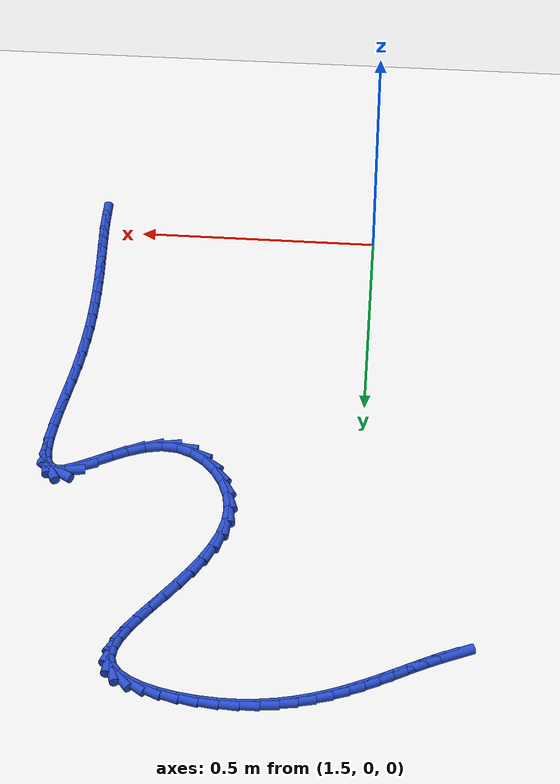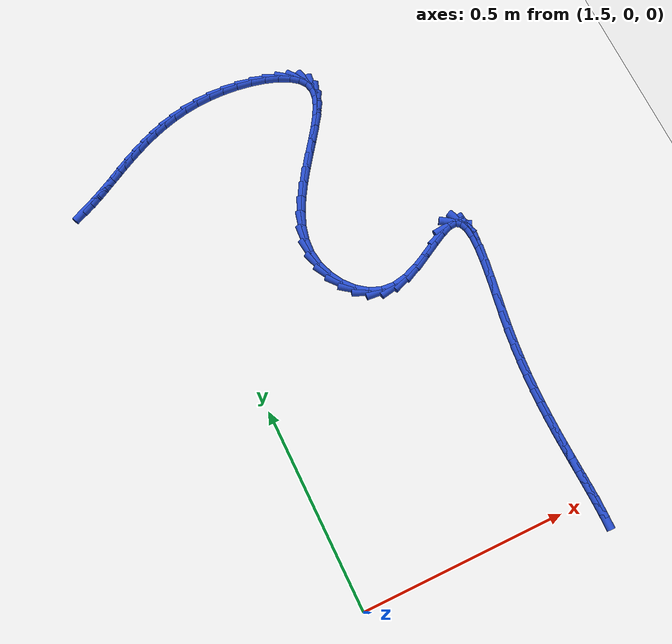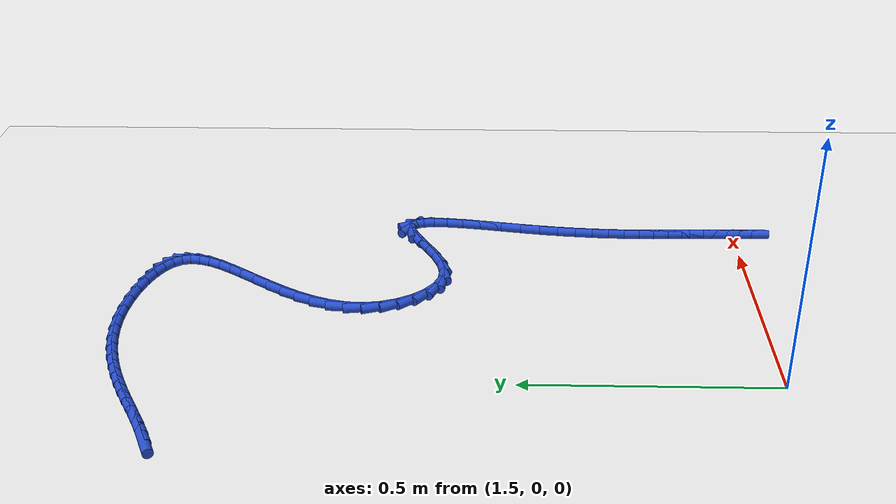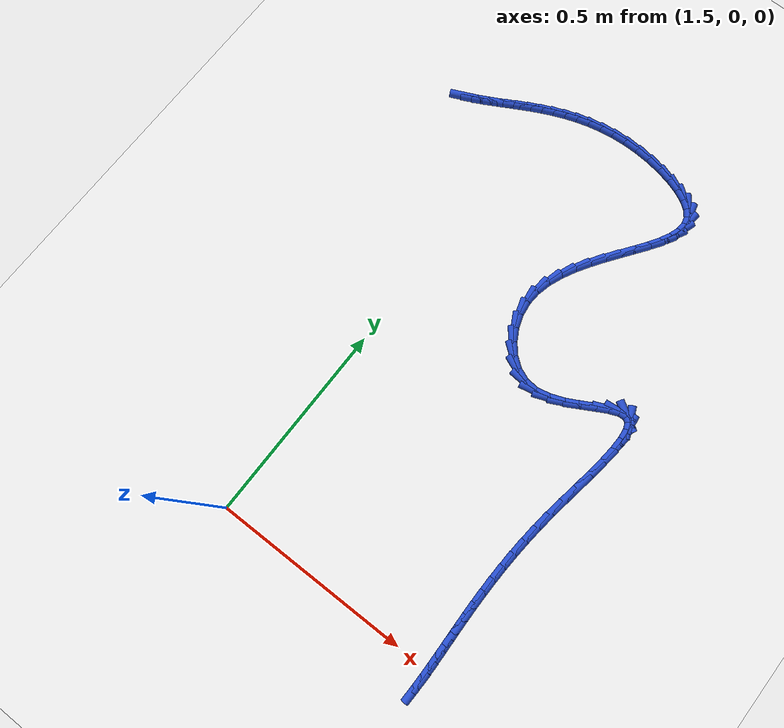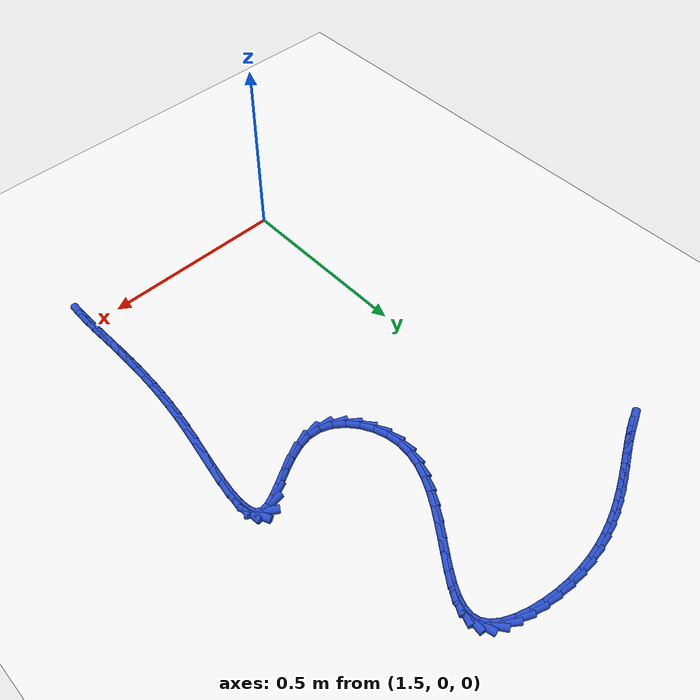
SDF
<sdf version="1.6">
 <world name="default">
  <model name="ground_plane">
   <static>1</static>
   <link name="link">
    <collision name="collision">
     <geometry><plane><normal>0 0 1</normal><size>100 100</size></plane></geometry>
     <surface><friction><ode><mu>100</mu><mu2>50</mu2></ode></friction></surface>
    </collision>
    <visual name="visual">
     <cast_shadows>0</cast_shadows>
     <geometry><plane><normal>0 0 1</normal><size>100 100</size></plane></geometry>
     <material>
      <script><uri>file://media/materials/scripts/gazebo.material</uri><name>Gazebo/WhiteGlow</name></script>
     </material>
    </visual>
   </link>
  </model>
  <model name="line">
   <link name="link_68">
    <pose>1.309213838832085 1.1424826777858401 0.01 0 1.57 0.422879289386558</pose>
    <collision name="collision">
     <geometry><cylinder><radius>0.01</radius><length>0.08</length></cylinder></geometry>
    </collision>
    <visual name="visual">
     <material>
      <script><name>Gazebo/Blue</name><uri>file://media/materials/scripts/gazebo.material</uri></script>
     </material>
     <geometry><cylinder><radius>0.01</radius><length>0.08</length></cylinder></geometry>
    </visual>
   </link>
   <link name="link_69">
    <pose>1.334979048755853 1.1540778080816934 0.01 0 1.57 0.4597089472812368</pose>
    <collision name="collision">
     <geometry><cylinder><radius>0.01</radius><length>0.08</length></cylinder></geometry>
    </collision>
    <visual name="visual">
     <material>
      <script><name>Gazebo/Blue</name><uri>file://media/materials/scripts/gazebo.material</uri></script>
     </material>
     <geometry><cylinder><radius>0.01</radius><length>0.08</length></cylinder></geometry>
    </visual>
   </link>
   <link name="link_70">
    <pose>1.359739162791736 1.1663362019239014 0.01 0 1.57 0.48503622406442387</pose>
    <collision name="collision">
     <geometry><cylinder><radius>0.01</radius><length>0.08</length></cylinder></geometry>
    </collision>
    <visual name="visual">
     <material>
      <script><name>Gazebo/Blue</name><uri>file://media/materials/scripts/gazebo.material</uri></script>
     </material>
     <geometry><cylinder><radius>0.01</radius><length>0.08</length></cylinder></geometry>
    </visual>
   </link>
   <link name="link_71">
    <pose>1.3839025982234772 1.1790710318430961 0.01 0 1.57 0.49764369342193876</pose>
    <collision name="collision">
     <geometry><cylinder><radius>0.01</radius><length>0.08</length></cylinder></geometry>
    </collision>
    <visual name="visual">
     <material>
      <script><name>Gazebo/Blue</name><uri>file://media/materials/scripts/gazebo.material</uri></script>
     </material>
     <geometry><cylinder><radius>0.01</radius><length>0.08</length></cylinder></geometry>
    </visual>
   </link>
   <link name="link_72">
    <pose>1.4078777723348186 1.19209547036991 0.01 0 1.57 0.4971068374341968</pose>
    <collision name="collision">
     <geometry><cylinder><radius>0.01</radius><length>0.08</length></cylinder></geometry>
    </collision>
    <visual name="visual">
     <material>
      <script><name>Gazebo/Blue</name><uri>file://media/materials/scripts/gazebo.material</uri></script>
     </material>
     <geometry><cylinder><radius>0.01</radius><length>0.08</length></cylinder></geometry>
    </visual>
   </link>
   <link name="link_73">
    <pose>1.4320731024095033 1.2052226900349758 0.01 0 1.57 0.48378244720025754</pose>
    <collision name="collision">
     <geometry><cylinder><radius>0.01</radius><length>0.08</length></cylinder></geometry>
    </collision>
    <visual name="visual">
     <material>
      <script><name>Gazebo/Blue</name><uri>file://media/materials/scripts/gazebo.material</uri></script>
     </material>
     <geometry><cylinder><radius>0.01</radius><length>0.08</length></cylinder></geometry>
    </visual>
   </link>
   <link name="link_74">
    <pose>1.4568970057312736 1.218265863368925 0.01 0 1.57 0.45897362490975624</pose>
    <collision name="collision">
     <geometry><cylinder><radius>0.01</radius><length>0.08</length></cylinder></geometry>
    </collision>
    <visual name="visual">
     <material>
      <script><name>Gazebo/Blue</name><uri>file://media/materials/scripts/gazebo.material</uri></script>
     </material>
     <geometry><cylinder><radius>0.01</radius><length>0.08</length></cylinder></geometry>
    </visual>
   </link>
   <link name="link_75">
    <pose>1.4827101576526458 1.2310219770363438 0.01 0 1.57 0.4249333047579474</pose>
    <collision name="collision">
     <geometry><cylinder><radius>0.01</radius><length>0.08</length></cylinder></geometry>
    </collision>
    <visual name="visual">
     <material>
      <script><name>Gazebo/Blue</name><uri>file://media/materials/scripts/gazebo.material</uri></script>
     </material>
     <geometry><cylinder><radius>0.01</radius><length>0.08</length></cylinder></geometry>
    </visual>
   </link>
   <link name="link_76">
    <pose>1.5096500364205654 1.2432123475653147 0.01 0 1.57 0.38259658655864315</pose>
    <collision name="collision">
     <geometry><cylinder><radius>0.01</radius><length>0.08</length></cylinder></geometry>
    </collision>
    <visual name="visual">
     <material>
      <script><name>Gazebo/Blue</name><uri>file://media/materials/scripts/gazebo.material</uri></script>
     </material>
     <geometry><cylinder><radius>0.01</radius><length>0.08</length></cylinder></geometry>
    </visual>
   </link>
   <link name="link_77">
    <pose>1.5377889485380904 1.2545361964180206 0.01 0 1.57 0.3325177276491408</pose>
    <collision name="collision">
     <geometry><cylinder><radius>0.01</radius><length>0.08</length></cylinder></geometry>
    </collision>
    <visual name="visual">
     <material>
      <script><name>Gazebo/Blue</name><uri>file://media/materials/scripts/gazebo.material</uri></script>
     </material>
     <geometry><cylinder><radius>0.01</radius><length>0.08</length></cylinder></geometry>
    </visual>
   </link>
   <link name="link_78">
    <pose>1.567199192675563 1.264692742401133 0.01 0 1.57 0.27534026839408376</pose>
    <collision name="collision">
     <geometry><cylinder><radius>0.01</radius><length>0.08</length></cylinder></geometry>
    </collision>
    <visual name="visual">
     <material>
      <script><name>Gazebo/Blue</name><uri>file://media/materials/scripts/gazebo.material</uri></script>
     </material>
     <geometry><cylinder><radius>0.01</radius><length>0.08</length></cylinder></geometry>
    </visual>
   </link>
   <link name="link_79">
    <pose>1.597953067503327 1.2733812043213233 0.01 0 1.57 0.211867930407641</pose>
    <collision name="collision">
     <geometry><cylinder><radius>0.01</radius><length>0.08</length></cylinder></geometry>
    </collision>
    <visual name="visual">
     <material>
      <script><name>Gazebo/Blue</name><uri>file://media/materials/scripts/gazebo.material</uri></script>
     </material>
     <geometry><cylinder><radius>0.01</radius><length>0.08</length></cylinder></geometry>
    </visual>
   </link>
   <link name="link_80">
    <pose>1.630122871691725 1.2803008009852628 0.01 0 1.57 0.14310982918673718</pose>
    <collision name="collision">
     <geometry><cylinder><radius>0.01</radius><length>0.08</length></cylinder></geometry>
    </collision>
    <visual name="visual">
     <material>
      <script><name>Gazebo/Blue</name><uri>file://media/materials/scripts/gazebo.material</uri></script>
     </material>
     <geometry><cylinder><radius>0.01</radius><length>0.08</length></cylinder></geometry>
    </visual>
   </link>
   <link name="link_81">
    <pose>1.6637809039111007 1.285150751199623 0.01 0 1.57 0.07028788329719157</pose>
    <collision name="collision">
     <geometry><cylinder><radius>0.01</radius><length>0.08</length></cylinder></geometry>
    </collision>
    <visual name="visual">
     <material>
      <script><name>Gazebo/Blue</name><uri>file://media/materials/scripts/gazebo.material</uri></script>
     </material>
     <geometry><cylinder><radius>0.01</radius><length>0.08</length></cylinder></geometry>
    </visual>
   </link>
   <link name="link_82">
    <pose>1.6989994628317961 1.2876302737710748 0.01 0 1.57 -0.0049131953609860305</pose>
    <collision name="collision">
     <geometry><cylinder><radius>0.01</radius><length>0.08</length></cylinder></geometry>
    </collision>
    <visual name="visual">
     <material>
      <script><name>Gazebo/Blue</name><uri>file://media/materials/scripts/gazebo.material</uri></script>
     </material>
     <geometry><cylinder><radius>0.01</radius><length>0.08</length></cylinder></geometry>
    </visual>
   </link>
   <link name="link_83">
    <pose>1.735809118701549 1.2874494192853687 0.01 0 1.57 -0.07771529933146062</pose>
    <collision name="collision">
     <geometry><cylinder><radius>0.01</radius><length>0.08</length></cylinder></geometry>
    </collision>
    <visual name="visual">
     <material>
      <script><name>Gazebo/Blue</name><uri>file://media/materials/scripts/gazebo.material</uri></script>
     </material>
     <geometry><cylinder><radius>0.01</radius><length>0.08</length></cylinder></geometry>
    </visual>
   </link>
   <link name="link_84">
    <pose>1.773478486447593 1.284516025140804 0.01 0 1.57 -0.14982390234809717</pose>
    <collision name="collision">
     <geometry><cylinder><radius>0.01</radius><length>0.08</length></cylinder></geometry>
    </collision>
    <visual name="visual">
     <material>
      <script><name>Gazebo/Blue</name><uri>file://media/materials/scripts/gazebo.material</uri></script>
     </material>
     <geometry><cylinder><radius>0.01</radius><length>0.08</length></cylinder></geometry>
    </visual>
   </link>
   <link name="link_85">
    <pose>1.810610192858235 1.2789108045823965 0.01 0 1.57 -0.22877861163015345</pose>
    <collision name="collision">
     <geometry><cylinder><radius>0.01</radius><length>0.08</length></cylinder></geometry>
    </collision>
    <visual name="visual">
     <material>
      <script><name>Gazebo/Blue</name><uri>file://media/materials/scripts/gazebo.material</uri></script>
     </material>
     <geometry><cylinder><radius>0.01</radius><length>0.08</length></cylinder></geometry>
    </visual>
   </link>
   <link name="link_86">
    <pose>1.8457844388334328 1.2707202921216532 0.01 0 1.57 -0.32430355158307944</pose>
    <collision name="collision">
     <geometry><cylinder><radius>0.01</radius><length>0.08</length></cylinder></geometry>
    </collision>
    <visual name="visual">
     <material>
      <script><name>Gazebo/Blue</name><uri>file://media/materials/scripts/gazebo.material</uri></script>
     </material>
     <geometry><cylinder><radius>0.01</radius><length>0.08</length></cylinder></geometry>
    </visual>
   </link>
   <link name="link_87">
    <pose>1.8775814252731424 1.2600310222700835 0.01 0 1.57 -0.45177147097754117</pose>
    <collision name="collision">
     <geometry><cylinder><radius>0.01</radius><length>0.08</length></cylinder></geometry>
    </collision>
    <visual name="visual">
     <material>
      <script><name>Gazebo/Blue</name><uri>file://media/materials/scripts/gazebo.material</uri></script>
     </material>
     <geometry><cylinder><radius>0.01</radius><length>0.08</length></cylinder></geometry>
    </visual>
   </link>
   <link name="link_88">
    <pose>1.9045813530773197 1.2469295295391936 0.01 0 1.57 -0.6385520193986516</pose>
    <collision name="collision">
     <geometry><cylinder><radius>0.01</radius><length>0.08</length></cylinder></geometry>
    </collision>
    <visual name="visual">
     <material>
      <script><name>Gazebo/Blue</name><uri>file://media/materials/scripts/gazebo.material</uri></script>
     </material>
     <geometry><cylinder><radius>0.01</radius><length>0.08</length></cylinder></geometry>
    </visual>
   </link>
   <link name="link_89">
    <pose>1.925364423145922 1.2315023484404928 0.01 0 1.57 -0.9307821046359748</pose>
    <collision name="collision">
     <geometry><cylinder><radius>0.01</radius><length>0.08</length></cylinder></geometry>
    </collision>
    <visual name="visual">
     <material>
      <script><name>Gazebo/Blue</name><uri>file://media/materials/scripts/gazebo.material</uri></script>
     </material>
     <geometry><cylinder><radius>0.01</radius><length>0.08</length></cylinder></geometry>
    </visual>
   </link>
   <link name="link_90">
    <pose>1.9385180620716291 1.2138361641304312 0.01 0 1.57 -1.327051909193736</pose>
    <collision name="collision">
     <geometry><cylinder><radius>0.01</radius><length>0.08</length></cylinder></geometry>
    </collision>
    <visual name="visual">
     <material>
      <script><name>Gazebo/Blue</name><uri>file://media/materials/scripts/gazebo.material</uri></script>
     </material>
     <geometry><cylinder><radius>0.01</radius><length>0.08</length></cylinder></geometry>
    </visual>
   </link>
   <link name="link_91">
    <pose>1.9434424917846074 1.1940346073389634 0.01 0 1.57 1.4630535877795638</pose>
    <collision name="collision">
     <geometry><cylinder><radius>0.01</radius><length>0.08</length></cylinder></geometry>
    </collision>
    <visual name="visual">
     <material>
      <script><name>Gazebo/Blue</name><uri>file://media/materials/scripts/gazebo.material</uri></script>
     </material>
     <geometry><cylinder><radius>0.01</radius><length>0.08</length></cylinder></geometry>
    </visual>
   </link>
   <link name="link_92">
    <pose>1.9410844548181452 1.1722335514496927 0.01 0 1.57 1.2251478255961592</pose>
    <collision name="collision">
     <geometry><cylinder><radius>0.01</radius><length>0.08</length></cylinder></geometry>
    </collision>
    <visual name="visual">
     <material>
      <script><name>Gazebo/Blue</name><uri>file://media/materials/scripts/gazebo.material</uri></script>
     </material>
     <geometry><cylinder><radius>0.01</radius><length>0.08</length></cylinder></geometry>
    </visual>
   </link>
   <link name="link_93">
    <pose>1.9325639864606032 1.1485724827423391 0.01 0 1.57 1.0800414056015475</pose>
    <collision name="collision">
     <geometry><cylinder><radius>0.01</radius><length>0.08</length></cylinder></geometry>
    </collision>
    <visual name="visual">
     <material>
      <script><name>Gazebo/Blue</name><uri>file://media/materials/scripts/gazebo.material</uri></script>
     </material>
     <geometry><cylinder><radius>0.01</radius><length>0.08</length></cylinder></geometry>
    </visual>
   </link>
   <link name="link_94">
    <pose>1.9190011220003462 1.1231908874966245 0.01 0 1.57 0.9954774554634858</pose>
    <collision name="collision">
     <geometry><cylinder><radius>0.01</radius><length>0.08</length></cylinder></geometry>
    </collision>
    <visual name="visual">
     <material>
      <script><name>Gazebo/Blue</name><uri>file://media/materials/scripts/gazebo.material</uri></script>
     </material>
     <geometry><cylinder><radius>0.01</radius><length>0.08</length></cylinder></geometry>
    </visual>
   </link>
   <link name="link_95">
    <pose>1.9015158967257353 1.0962282519922684 0.01 0 1.57 0.950573789527697</pose>
    <collision name="collision">
     <geometry><cylinder><radius>0.01</radius><length>0.08</length></cylinder></geometry>
    </collision>
    <visual name="visual">
     <material>
      <script><name>Gazebo/Blue</name><uri>file://media/materials/scripts/gazebo.material</uri></script>
     </material>
     <geometry><cylinder><radius>0.01</radius><length>0.08</length></cylinder></geometry>
    </visual>
   </link>
   <link name="link_96">
    <pose>1.8812283459251327 1.0678240625089923 0.01 0 1.57 0.9340042433918616</pose>
    <collision name="collision">
     <geometry><cylinder><radius>0.01</radius><length>0.08</length></cylinder></geometry>
    </collision>
    <visual name="visual">
     <material>
      <script><name>Gazebo/Blue</name><uri>file://media/materials/scripts/gazebo.material</uri></script>
     </material>
     <geometry><cylinder><radius>0.01</radius><length>0.08</length></cylinder></geometry>
    </visual>
   </link>
   <link name="link_97">
    <pose>1.8592585048869015 1.0381178053265168 0.01 0 1.57 0.9402641383963276</pose>
    <collision name="collision">
     <geometry><cylinder><radius>0.01</radius><length>0.08</length></cylinder></geometry>
    </collision>
    <visual name="visual">
     <material>
      <script><name>Gazebo/Blue</name><uri>file://media/materials/scripts/gazebo.material</uri></script>
     </material>
     <geometry><cylinder><radius>0.01</radius><length>0.08</length></cylinder></geometry>
    </visual>
   </link>
   <link name="link_98">
    <pose>1.8367264088994033 1.0072489667245623 0.01 0 1.57 0.9674746842188752</pose>
    <collision name="collision">
     <geometry><cylinder><radius>0.01</radius><length>0.08</length></cylinder></geometry>
    </collision>
    <visual name="visual">
     <material>
      <script><name>Gazebo/Blue</name><uri>file://media/materials/scripts/gazebo.material</uri></script>
     </material>
     <geometry><cylinder><radius>0.01</radius><length>0.08</length></cylinder></geometry>
    </visual>
   </link>
   <link name="link_99">
    <pose>1.814752093251001 0.9753570329828496 0.01 0 1.57 1.0163371234072116</pose>
    <collision name="collision">
     <geometry><cylinder><radius>0.01</radius><length>0.08</length></cylinder></geometry>
    </collision>
    <visual name="visual">
     <material>
      <script><name>Gazebo/Blue</name><uri>file://media/materials/scripts/gazebo.material</uri></script>
     </material>
     <geometry><cylinder><radius>0.01</radius><length>0.08</length></cylinder></geometry>
    </visual>
   </link>
   <link name="link_100">
    <pose>1.7944555932300568 0.9425814903810994 0.01 0 1.57 1.0896715721795562</pose>
    <collision name="collision">
     <geometry><cylinder><radius>0.01</radius><length>0.08</length></cylinder></geometry>
    </collision>
    <visual name="visual">
     <material>
      <script><name>Gazebo/Blue</name><uri>file://media/materials/scripts/gazebo.material</uri></script>
     </material>
     <geometry><cylinder><radius>0.01</radius><length>0.08</length></cylinder></geometry>
    </visual>
   </link>
   <link name="link_101">
    <pose>1.776956944124933 0.9090618251990328 0.01 0 1.57 1.1920332140351526</pose>
    <collision name="collision">
     <geometry><cylinder><radius>0.01</radius><length>0.08</length></cylinder></geometry>
    </collision>
    <visual name="visual">
     <material>
      <script><name>Gazebo/Blue</name><uri>file://media/materials/scripts/gazebo.material</uri></script>
     </material>
     <geometry><cylinder><radius>0.01</radius><length>0.08</length></cylinder></geometry>
    </visual>
   </link>
   <link name="link_102">
    <pose>1.7633761812239928 0.8749375237163696 0.01 0 1.57 1.328663701098562</pose>
    <collision name="collision">
     <geometry><cylinder><radius>0.01</radius><length>0.08</length></cylinder></geometry>
    </collision>
    <visual name="visual">
     <material>
      <script><name>Gazebo/Blue</name><uri>file://media/materials/scripts/gazebo.material</uri></script>
     </material>
     <geometry><cylinder><radius>0.01</radius><length>0.08</length></cylinder></geometry>
    </visual>
   </link>
   <link name="link_103">
    <pose>1.754833339815597 0.8403480722128307 0.01 0 1.57 1.5025970387768495</pose>
    <collision name="collision">
     <geometry><cylinder><radius>0.01</radius><length>0.08</length></cylinder></geometry>
    </collision>
    <visual name="visual">
     <material>
      <script><name>Gazebo/Blue</name><uri>file://media/materials/scripts/gazebo.material</uri></script>
     </material>
     <geometry><cylinder><radius>0.01</radius><length>0.08</length></cylinder></geometry>
    </visual>
   </link>
   <link name="link_104">
    <pose>1.7524484551881092 0.8054329569681369 0.01 0 1.57 -1.4365812337215478</pose>
    <collision name="collision">
     <geometry><cylinder><radius>0.01</radius><length>0.08</length></cylinder></geometry>
    </collision>
    <visual name="visual">
     <material>
      <script><name>Gazebo/Blue</name><uri>file://media/materials/scripts/gazebo.material</uri></script>
     </material>
     <geometry><cylinder><radius>0.01</radius><length>0.08</length></cylinder></geometry>
    </visual>
   </link>
   <link name="link_105">
    <pose>1.7571702238469455 0.7704638466876584 0.01 0 1.57 -1.2421591174844258</pose>
    <collision name="collision">
     <geometry><cylinder><radius>0.01</radius><length>0.08</length></cylinder></geometry>
    </collision>
    <visual name="visual">
     <material>
      <script><name>Gazebo/Blue</name><uri>file://media/materials/scripts/gazebo.material</uri></script>
     </material>
     <geometry><cylinder><radius>0.01</radius><length>0.08</length></cylinder></geometry>
    </visual>
   </link>
   <link name="link_106">
    <pose>1.7686897174769345 0.7366826276567235 0.01 0 1.57 -1.057033299922474</pose>
    <collision name="collision">
     <geometry><cylinder><radius>0.01</radius><length>0.08</length></cylinder></geometry>
    </collision>
    <visual name="visual">
     <material>
      <script><name>Gazebo/Blue</name><uri>file://media/materials/scripts/gazebo.material</uri></script>
     </material>
     <geometry><cylinder><radius>0.01</radius><length>0.08</length></cylinder></geometry>
    </visual>
   </link>
   <link name="link_107">
    <pose>1.7861377136838696 0.705763435235683 0.01 0 1.57 -0.8645264955661112</pose>
    <collision name="collision">
     <geometry><cylinder><radius>0.01</radius><length>0.08</length></cylinder></geometry>
    </collision>
    <visual name="visual">
     <material>
      <script><name>Gazebo/Blue</name><uri>file://media/materials/scripts/gazebo.material</uri></script>
     </material>
     <geometry><cylinder><radius>0.01</radius><length>0.08</length></cylinder></geometry>
    </visual>
   </link>
   <link name="link_108">
    <pose>1.8086424187474006 0.6793823884812865 0.01 0 1.57 -0.6470779901116364</pose>
    <collision name="collision">
     <geometry><cylinder><radius>0.01</radius><length>0.08</length></cylinder></geometry>
    </collision>
    <visual name="visual">
     <material>
      <script><name>Gazebo/Blue</name><uri>file://media/materials/scripts/gazebo.material</uri></script>
     </material>
     <geometry><cylinder><radius>0.01</radius><length>0.08</length></cylinder></geometry>
    </visual>
   </link>
   <link name="link_109">
    <pose>1.8353320389471812 0.6592156064502837 0.01 0 1.57 -0.3883915066100349</pose>
    <collision name="collision">
     <geometry><cylinder><radius>0.01</radius><length>0.08</length></cylinder></geometry>
    </collision>
    <visual name="visual">
     <material>
      <script><name>Gazebo/Blue</name><uri>file://media/materials/scripts/gazebo.material</uri></script>
     </material>
     <geometry><cylinder><radius>0.01</radius><length>0.08</length></cylinder></geometry>
    </visual>
   </link>
   <link name="link_110">
    <pose>1.8653347805628602 0.6469392081994242 0.01 0 1.57 -0.08478786000597313</pose>
    <collision name="collision">
     <geometry><cylinder><radius>0.01</radius><length>0.08</length></cylinder></geometry>
    </collision>
    <visual name="visual">
     <material>
      <script><name>Gazebo/Blue</name><uri>file://media/materials/scripts/gazebo.material</uri></script>
     </material>
     <geometry><cylinder><radius>0.01</radius><length>0.08</length></cylinder></geometry>
    </visual>
   </link>
   <link name="link_111">
    <pose>1.8977760923833709 0.6441819683771619 0.01 0 1.57 0.18944561392198633</pose>
    <collision name="collision">
     <geometry><cylinder><radius>0.01</radius><length>0.08</length></cylinder></geometry>
    </collision>
    <visual name="visual">
     <material>
      <script><name>Gazebo/Blue</name><uri>file://media/materials/scripts/gazebo.material</uri></script>
     </material>
     <geometry><cylinder><radius>0.01</radius><length>0.08</length></cylinder></geometry>
    </visual>
   </link>
   <link name="link_112">
    <pose>1.9316712582220448 0.6506811972109794 0.01 0 1.57 0.36321459865164213</pose>
    <collision name="collision">
     <geometry><cylinder><radius>0.01</radius><length>0.08</length></cylinder></geometry>
    </collision>
    <visual name="visual">
     <material>
      <script><name>Gazebo/Blue</name><uri>file://media/materials/scripts/gazebo.material</uri></script>
     </material>
     <geometry><cylinder><radius>0.01</radius><length>0.08</length></cylinder></geometry>
    </visual>
   </link>
   <link name="link_113">
    <pose>1.9658907128680347 0.6636872368684267 0.01 0 1.57 0.4610525649961091</pose>
    <collision name="collision">
     <geometry><cylinder><radius>0.01</radius><length>0.08</length></cylinder></geometry>
    </collision>
    <visual name="visual">
     <material>
      <script><name>Gazebo/Blue</name><uri>file://media/materials/scripts/gazebo.material</uri></script>
     </material>
     <geometry><cylinder><radius>0.01</radius><length>0.08</length></cylinder></geometry>
    </visual>
   </link>
   <link name="link_114">
    <pose>1.9992950334882769 0.6802811802470315 0.01 0 1.57 0.5020023125495594</pose>
    <collision name="collision">
     <geometry><cylinder><radius>0.01</radius><length>0.08</length></cylinder></geometry>
    </collision>
    <visual name="visual">
     <material>
      <script><name>Gazebo/Blue</name><uri>file://media/materials/scripts/gazebo.material</uri></script>
     </material>
     <geometry><cylinder><radius>0.01</radius><length>0.08</length></cylinder></geometry>
    </visual>
   </link>
   <link name="link_115">
    <pose>2.030744797249706 0.6975441202443208 0.01 0 1.57 0.48693073892007827</pose>
    <collision name="collision">
     <geometry><cylinder><radius>0.01</radius><length>0.08</length></cylinder></geometry>
    </collision>
    <visual name="visual">
     <material>
      <script><name>Gazebo/Blue</name><uri>file://media/materials/scripts/gazebo.material</uri></script>
     </material>
     <geometry><cylinder><radius>0.01</radius><length>0.08</length></cylinder></geometry>
    </visual>
   </link>
   <link name="link_116">
    <pose>2.0591005813192567 0.7125571497578214 0.01 0 1.57 0.38746488375495075</pose>
    <collision name="collision">
     <geometry><cylinder><radius>0.01</radius><length>0.08</length></cylinder></geometry>
    </collision>
    <visual name="visual">
     <material>
      <script><name>Gazebo/Blue</name><uri>file://media/materials/scripts/gazebo.material</uri></script>
     </material>
     <geometry><cylinder><radius>0.01</radius><length>0.08</length></cylinder></geometry>
    </visual>
   </link>
   <link name="link_117">
    <pose>2.083222962863864 0.7224013616850605 0.01 0 1.57 0.09357588704709614</pose>
    <collision name="collision">
     <geometry><cylinder><radius>0.01</radius><length>0.08</length></cylinder></geometry>
    </collision>
    <visual name="visual">
     <material>
      <script><name>Gazebo/Blue</name><uri>file://media/materials/scripts/gazebo.material</uri></script>
     </material>
     <geometry><cylinder><radius>0.01</radius><length>0.08</length></cylinder></geometry>
    </visual>
   </link>
   <link name="link_118">
    <pose>2.1019740590682003 0.7241611516487931 0.01 0 1.57 -0.5675825039010627</pose>
    <collision name="collision">
     <geometry><cylinder><radius>0.01</radius><length>0.08</length></cylinder></geometry>
    </collision>
    <visual name="visual">
     <material>
      <script><name>Gazebo/Blue</name><uri>file://media/materials/scripts/gazebo.material</uri></script>
     </material>
     <geometry><cylinder><radius>0.01</radius><length>0.08</length></cylinder></geometry>
    </visual>
   </link>
   <link name="link_119">
    <pose>2.1147318567495286 0.7160272503537921 0.01 0 1.57 -1.1628246713149029</pose>
    <collision name="collision">
     <geometry><cylinder><radius>0.01</radius><length>0.08</length></cylinder></geometry>
    </collision>
    <visual name="visual">
     <material>
      <script><name>Gazebo/Blue</name><uri>file://media/materials/scripts/gazebo.material</uri></script>
     </material>
     <geometry><cylinder><radius>0.01</radius><length>0.08</length></cylinder></geometry>
    </visual>
   </link>
   <link name="link_120">
    <pose>2.122136153529836 0.6988964705688647 0.01 0 1.57 -1.4553019132693494</pose>
    <collision name="collision">
     <geometry><cylinder><radius>0.01</radius><length>0.08</length></cylinder></geometry>
    </collision>
    <visual name="visual">
     <material>
      <script><name>Gazebo/Blue</name><uri>file://media/materials/scripts/gazebo.material</uri></script>
     </material>
     <geometry><cylinder><radius>0.01</radius><length>0.08</length></cylinder></geometry>
    </visual>
   </link>
   <link name="link_121">
    <pose>2.12501609279776 0.6740716963859683 0.01 0 1.57 1.544684955134908</pose>
    <collision name="collision">
     <geometry><cylinder><radius>0.01</radius><length>0.08</length></cylinder></geometry>
    </collision>
    <visual name="visual">
     <material>
      <script><name>Gazebo/Blue</name><uri>file://media/materials/scripts/gazebo.material</uri></script>
     </material>
     <geometry><cylinder><radius>0.01</radius><length>0.08</length></cylinder></geometry>
    </visual>
   </link>
   <link name="link_122">
    <pose>2.12420081794194 0.6428558118970618 0.01 0 1.57 1.469738763220886</pose>
    <collision name="collision">
     <geometry><cylinder><radius>0.01</radius><length>0.08</length></cylinder></geometry>
    </collision>
    <visual name="visual">
     <material>
      <script><name>Gazebo/Blue</name><uri>file://media/materials/scripts/gazebo.material</uri></script>
     </material>
     <geometry><cylinder><radius>0.01</radius><length>0.08</length></cylinder></geometry>
    </visual>
   </link>
   <link name="link_123">
    <pose>2.1205194723510146 0.6065517011941026 0.01 0 1.57 1.4291141960836888</pose>
    <collision name="collision">
     <geometry><cylinder><radius>0.01</radius><length>0.08</length></cylinder></geometry>
    </collision>
    <visual name="visual">
     <material>
      <script><name>Gazebo/Blue</name><uri>file://media/materials/scripts/gazebo.material</uri></script>
     </material>
     <geometry><cylinder><radius>0.01</radius><length>0.08</length></cylinder></geometry>
    </visual>
   </link>
   <link name="link_124">
    <pose>2.1148011994136215 0.5664622483690497 0.01 0 1.57 1.4095185672162915</pose>
    <collision name="collision">
     <geometry><cylinder><radius>0.01</radius><length>0.08</length></cylinder></geometry>
    </collision>
    <visual name="visual">
     <material>
      <script><name>Gazebo/Blue</name><uri>file://media/materials/scripts/gazebo.material</uri></script>
     </material>
     <geometry><cylinder><radius>0.01</radius><length>0.08</length></cylinder></geometry>
    </visual>
   </link>
   <link name="link_125">
    <pose>2.1078751425184006 0.5238903375138598 0.01 0 1.57 1.40536337909419</pose>
    <collision name="collision">
     <geometry><cylinder><radius>0.01</radius><length>0.08</length></cylinder></geometry>
    </collision>
    <visual name="visual">
     <material>
      <script><name>Gazebo/Blue</name><uri>file://media/materials/scripts/gazebo.material</uri></script>
     </material>
     <geometry><cylinder><radius>0.01</radius><length>0.08</length></cylinder></geometry>
    </visual>
   </link>
   <link name="link_126">
    <pose>2.10057044505399 0.48013885272049167 0.01 0 1.57 1.414965288131852</pose>
    <collision name="collision">
     <geometry><cylinder><radius>0.01</radius><length>0.08</length></cylinder></geometry>
    </collision>
    <visual name="visual">
     <material>
      <script><name>Gazebo/Blue</name><uri>file://media/materials/scripts/gazebo.material</uri></script>
     </material>
     <geometry><cylinder><radius>0.01</radius><length>0.08</length></cylinder></geometry>
    </visual>
   </link>
   <link name="link_127">
    <pose>2.093716250409029 0.43651067808090327 0.01 0 1.57 1.4380216537578863</pose>
    <collision name="collision">
     <geometry><cylinder><radius>0.01</radius><length>0.08</length></cylinder></geometry>
    </collision>
    <visual name="visual">
     <material>
      <script><name>Gazebo/Blue</name><uri>file://media/materials/scripts/gazebo.material</uri></script>
     </material>
     <geometry><cylinder><radius>0.01</radius><length>0.08</length></cylinder></geometry>
    </visual>
   </link>
   <link name="link_128">
    <pose>2.08806517734747 0.39419970087586537 0.01 0 1.57 1.4653328740744365</pose>
    <collision name="collision">
     <geometry><cylinder><radius>0.01</radius><length>0.08</length></cylinder></geometry>
    </collision>
    <visual name="visual">
     <material>
      <script><name>Gazebo/Blue</name><uri>file://media/materials/scripts/gazebo.material</uri></script>
     </material>
     <geometry><cylinder><radius>0.01</radius><length>0.08</length></cylinder></geometry>
    </visual>
   </link>
   <link name="link_129">
    <pose>2.083760191281562 0.353531456904019 0.01 0 1.57 1.4915194723358198</pose>
    <collision name="collision">
     <geometry><cylinder><radius>0.01</radius><length>0.08</length></cylinder></geometry>
    </collision>
    <visual name="visual">
     <material>
      <script><name>Gazebo/Blue</name><uri>file://media/materials/scripts/gazebo.material</uri></script>
     </material>
     <geometry><cylinder><radius>0.01</radius><length>0.08</length></cylinder></geometry>
    </visual>
   </link>
   <link name="link_130">
    <pose>2.080652750257649 0.31441627740140454 0.01 0 1.57 1.5161359859639836</pose>
    <collision name="collision">
     <geometry><cylinder><radius>0.01</radius><length>0.08</length></cylinder></geometry>
    </collision>
    <visual name="visual">
     <material>
      <script><name>Gazebo/Blue</name><uri>file://media/materials/scripts/gazebo.material</uri></script>
     </material>
     <geometry><cylinder><radius>0.01</radius><length>0.08</length></cylinder></geometry>
    </visual>
   </link>
   <link name="link_131">
    <pose>2.0785924973687577 0.27676190849991544 0.01 0 1.57 1.5387445918499638</pose>
    <collision name="collision">
     <geometry><cylinder><radius>0.01</radius><length>0.08</length></cylinder></geometry>
    </collision>
    <visual name="visual">
     <material>
      <script><name>Gazebo/Blue</name><uri>file://media/materials/scripts/gazebo.material</uri></script>
     </material>
     <geometry><cylinder><radius>0.01</radius><length>0.08</length></cylinder></geometry>
    </visual>
   </link>
   <link name="link_132">
    <pose>2.077429075707909 0.24047609633144473 0.01 0 1.57 1.5588873444395217</pose>
    <collision name="collision">
     <geometry><cylinder><radius>0.01</radius><length>0.08</length></cylinder></geometry>
    </collision>
    <visual name="visual">
     <material>
      <script><name>Gazebo/Blue</name><uri>file://media/materials/scripts/gazebo.material</uri></script>
     </material>
     <geometry><cylinder><radius>0.01</radius><length>0.08</length></cylinder></geometry>
    </visual>
   </link>
   <link name="link_133">
    <pose>2.077012128368129 0.20546658702788648 0.01 0 1.57 -1.5654994765215757</pose>
    <collision name="collision">
     <geometry><cylinder><radius>0.01</radius><length>0.08</length></cylinder></geometry>
    </collision>
    <visual name="visual">
     <material>
      <script><name>Gazebo/Blue</name><uri>file://media/materials/scripts/gazebo.material</uri></script>
     </material>
     <geometry><cylinder><radius>0.01</radius><length>0.08</length></cylinder></geometry>
    </visual>
   </link>
   <link name="link_134">
    <pose>2.0771912984424388 0.17164112672113258 0.01 0 1.57 -1.5517072736863093</pose>
    <collision name="collision">
     <geometry><cylinder><radius>0.01</radius><length>0.08</length></cylinder></geometry>
    </collision>
    <visual name="visual">
     <material>
      <script><name>Gazebo/Blue</name><uri>file://media/materials/scripts/gazebo.material</uri></script>
     </material>
     <geometry><cylinder><radius>0.01</radius><length>0.08</length></cylinder></geometry>
    </visual>
   </link>
   <link name="link_135">
    <pose>2.077816229023863 0.13890746154307693 0.01 0 1.57 -1.5418030484948422</pose>
    <collision name="collision">
     <geometry><cylinder><radius>0.01</radius><length>0.08</length></cylinder></geometry>
    </collision>
    <visual name="visual">
     <material>
      <script><name>Gazebo/Blue</name><uri>file://media/materials/scripts/gazebo.material</uri></script>
     </material>
     <geometry><cylinder><radius>0.01</radius><length>0.08</length></cylinder></geometry>
    </visual>
   </link>
   <link name="link_136">
    <pose>2.078736563205426 0.10717333762561274 0.01 0 1.57 -1.5362499012507669</pose>
    <collision name="collision">
     <geometry><cylinder><radius>0.01</radius><length>0.08</length></cylinder></geometry>
    </collision>
    <visual name="visual">
     <material>
      <script><name>Gazebo/Blue</name><uri>file://media/materials/scripts/gazebo.material</uri></script>
     </material>
     <geometry><cylinder><radius>0.01</radius><length>0.08</length></cylinder></geometry>
    </visual>
   </link>
   <link name="link_137">
    <pose>2.0798019440801503 0.07634650110063321 0.01 0 1.57 -1.5354892133796458</pose>
    <collision name="collision">
     <geometry><cylinder><radius>0.01</radius><length>0.08</length></cylinder></geometry>
    </collision>
    <visual name="visual">
     <material>
      <script><name>Gazebo/Blue</name><uri>file://media/materials/scripts/gazebo.material</uri></script>
     </material>
     <geometry><cylinder><radius>0.01</radius><length>0.08</length></cylinder></geometry>
    </visual>
   </link>
   <link name="link_138">
    <pose>2.08086201474106 0.04633469810003165 0.01 0 1.57 -1.5399275522310518</pose>
    <collision name="collision">
     <geometry><cylinder><radius>0.01</radius><length>0.08</length></cylinder></geometry>
    </collision>
    <visual name="visual">
     <material>
      <script><name>Gazebo/Blue</name><uri>file://media/materials/scripts/gazebo.material</uri></script>
     </material>
     <geometry><cylinder><radius>0.01</radius><length>0.08</length></cylinder></geometry>
    </visual>
   </link>
   <link name="link_139">
    <pose>2.081766418281178 0.017045674755701193 0.01 0 1.57 -1.5499197062597023</pose>
    <collision name="collision">
     <geometry><cylinder><radius>0.01</radius><length>0.08</length></cylinder></geometry>
    </collision>
    <visual name="visual">
     <material>
      <script><name>Gazebo/Blue</name><uri>file://media/materials/scripts/gazebo.material</uri></script>
     </material>
     <geometry><cylinder><radius>0.01</radius><length>0.08</length></cylinder></geometry>
    </visual>
   </link>
   <link name="link_140">
    <pose>2.082364797793529 -0.011612822800464426 0.01 0 1.57 -1.5657466741889092</pose>
    <collision name="collision">
     <geometry><cylinder><radius>0.01</radius><length>0.08</length></cylinder></geometry>
    </collision>
    <visual name="visual">
     <material>
      <script><name>Gazebo/Blue</name><uri>file://media/materials/scripts/gazebo.material</uri></script>
     </material>
     <geometry><cylinder><radius>0.01</radius><length>0.08</length></cylinder></geometry>
    </visual>
   </link>
   <link name="link_141">
    <pose>2.0825067963711357 -0.03973304843657283 0.01 0 1.57 1.5540046776513936</pose>
    <collision name="collision">
     <geometry><cylinder><radius>0.01</radius><length>0.08</length></cylinder></geometry>
    </collision>
    <visual name="visual">
     <material>
      <script><name>Gazebo/Blue</name><uri>file://media/materials/scripts/gazebo.material</uri></script>
     </material>
     <geometry><cylinder><radius>0.01</radius><length>0.08</length></cylinder></geometry>
    </visual>
   </link>
  </model>
 </world>
</sdf>
